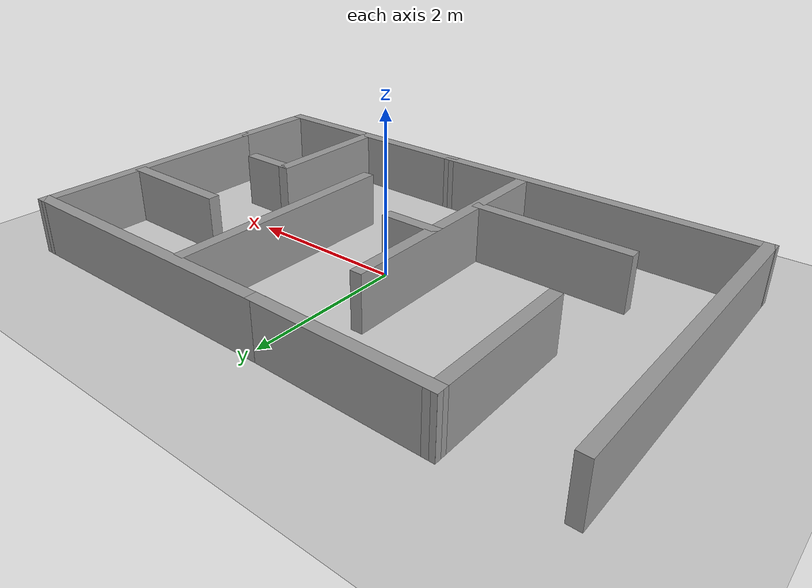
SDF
<?xml version="1.0"?>
<sdf version="1.6">
  <world name="maze_2_world">

    <!-- Required plugin for ROS-Gazebo interaction -->
    <plugin name="gazebo_ros_factory" filename="libgazebo_ros_factory.so"/>

    <!-- Ground plane -->
    <include>
      <uri>model://ground_plane</uri>
    </include>

    <!-- Sun (lighting) -->
    <include>
      <uri>model://sun</uri>
    </include>

    <include>
      <uri>model://maze_2</uri>  <!-- Must match model.config -->
      <pose>0 0 0 0 0 0</pose>   <!-- x y z roll pitch yaw -->
    </include>

    <!-- Scene settings (shadows, etc.) -->
    <scene>
      <shadows>false</shadows>
    </scene>

    <!-- Default camera view -->
    <gui fullscreen='0'>
      <camera name='user_camera'>
        <pose frame=''>0.319654 -0.235002 9.29441 0 1.5138 0.009599</pose>
        <view_controller>orbit</view_controller>
        <projection_type>perspective</projection_type>
      </camera>
    </gui>

    <!-- Physics engine settings (same as original) -->
    <physics type="ode">
      <real_time_update_rate>1000.0</real_time_update_rate>
      <max_step_size>0.001</max_step_size>
      <real_time_factor>1</real_time_factor>
      <ode>
        <solver>
          <type>quick</type>
          <iters>150</iters>
          <precon_iters>0</precon_iters>
          <sor>1.400000</sor>
          <use_dynamic_moi_rescaling>1</use_dynamic_moi_rescaling>
        </solver>
        <constraints>
          <cfm>0.00001</cfm>
          <erp>0.2</erp>
          <contact_max_correcting_vel>2000.000000</contact_max_correcting_vel>
          <contact_surface_layer>0.01000</contact_surface_layer>
        </constraints>
      </ode>
    </physics>

    <!-- Optional: If your maze is static (unchanging), declare it -->
    <model name="maze_2">
      <static>true</static>  <!-- Prevents physics updates for better performance -->
    </model>

  </world>
</sdf>

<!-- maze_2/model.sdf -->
<sdf version='1.7'>
  <model name='maze_2'>
    <pose>-2.50835 0.888785 0 0 -0 0</pose>
    <link name='Wall_0'>
      <collision name='Wall_0_Collision'>
        <geometry>
          <box>
            <size>3.07134 0.15 0.7</size>
          </box>
        </geometry>
        <pose>0 0 0.35 0 -0 0</pose>
      </collision>
      <visual name='Wall_0_Visual'>
        <pose>0 0 0.35 0 -0 0</pose>
        <geometry>
          <box>
            <size>3.07134 0.15 0.7</size>
          </box>
        </geometry>
        <material>
          <script>
            <uri>file://media/materials/scripts/gazebo.material</uri>
            <name>Gazebo/Grey</name>
          </script>
          <ambient>1 1 1 1</ambient>
        </material>
        <meta>
          <layer>0</layer>
        </meta>
      </visual>
      <pose>2.04485 -2.11228 0 0 -0 -0.004451</pose>
    </link>
    <link name='Wall_1'>
      <collision name='Wall_1_Collision'>
        <geometry>
          <box>
            <size>1.28749 0.15 0.7</size>
          </box>
        </geometry>
        <pose>0 0 0.35 0 -0 0</pose>
      </collision>
      <visual name='Wall_1_Visual'>
        <pose>0 0 0.35 0 -0 0</pose>
        <geometry>
          <box>
            <size>1.28749 0.15 0.7</size>
          </box>
        </geometry>
        <material>
          <script>
            <uri>file://media/materials/scripts/gazebo.material</uri>
            <name>Gazebo/Grey</name>
          </script>
          <ambient>1 1 1 1</ambient>
        </material>
        <meta>
          <layer>0</layer>
        </meta>
      </visual>
      <pose>3.51024 -1.55006 0 0 -0 1.5622</pose>
    </link>
    <link name='Wall_12'>
      <collision name='Wall_12_Collision'>
        <geometry>
          <box>
            <size>1.5 0.15 0.7</size>
          </box>
        </geometry>
        <pose>0 0 0.35 0 -0 0</pose>
      </collision>
      <visual name='Wall_12_Visual'>
        <pose>0 0 0.35 0 -0 0</pose>
        <geometry>
          <box>
            <size>1.5 0.15 0.7</size>
          </box>
        </geometry>
        <material>
          <script>
            <uri>file://media/materials/scripts/gazebo.material</uri>
            <name>Gazebo/Grey</name>
          </script>
          <ambient>1 1 1 1</ambient>
        </material>
        <meta>
          <layer>0</layer>
        </meta>
      </visual>
      <pose>2.76335 0.809215 0 0 -0 0</pose>
    </link>
    <link name='Wall_14'>
      <collision name='Wall_14_Collision'>
        <geometry>
          <box>
            <size>3 0.15 0.7</size>
          </box>
        </geometry>
        <pose>0 0 0.35 0 -0 0</pose>
      </collision>
      <visual name='Wall_14_Visual'>
        <pose>0 0 0.35 0 -0 0</pose>
        <geometry>
          <box>
            <size>3 0.15 0.7</size>
          </box>
        </geometry>
        <material>
          <script>
            <uri>file://media/materials/scripts/gazebo.material</uri>
            <name>Gazebo/Grey</name>
          </script>
          <ambient>1 1 1 1</ambient>
        </material>
        <meta>
          <layer>0</layer>
        </meta>
      </visual>
      <pose>1.08935 0.534215 0 0 -0 -1.5708</pose>
    </link>
    <link name='Wall_17'>
      <collision name='Wall_17_Collision'>
        <geometry>
          <box>
            <size>4.2497 0.15 0.7</size>
          </box>
        </geometry>
        <pose>0 0 0.35 0 -0 0</pose>
      </collision>
      <visual name='Wall_17_Visual'>
        <pose>0 0 0.35 0 -0 0</pose>
        <geometry>
          <box>
            <size>4.2497 0.15 0.7</size>
          </box>
        </geometry>
        <material>
          <script>
            <uri>file://media/materials/scripts/gazebo.material</uri>
            <name>Gazebo/Grey</name>
          </script>
          <ambient>1 1 1 1</ambient>
        </material>
        <meta>
          <layer>0</layer>
        </meta>
      </visual>
      <pose>-1.46565 -2.10579 0 0 -0 3.14159</pose>
    </link>
    <link name='Wall_18'>
      <collision name='Wall_18_Collision'>
        <geometry>
          <box>
            <size>4.2369 0.15 0.7</size>
          </box>
        </geometry>
        <pose>0 0 0.35 0 -0 0</pose>
      </collision>
      <visual name='Wall_18_Visual'>
        <pose>0 0 0.35 0 -0 0</pose>
        <geometry>
          <box>
            <size>4.2369 0.15 0.7</size>
          </box>
        </geometry>
        <material>
          <script>
            <uri>file://media/materials/scripts/gazebo.material</uri>
            <name>Gazebo/Grey</name>
          </script>
          <ambient>1 1 1 1</ambient>
        </material>
        <meta>
          <layer>0</layer>
        </meta>
      </visual>
      <pose>-3.50915 -0.062285 0 0 -0 1.56762</pose>
    </link>
    <link name='Wall_20'>
      <collision name='Wall_20_Collision'>
        <geometry>
          <box>
            <size>2.25 0.15 0.7</size>
          </box>
        </geometry>
        <pose>0 0 0.35 0 -0 0</pose>
      </collision>
      <visual name='Wall_20_Visual'>
        <pose>0 0 0.35 0 -0 0</pose>
        <geometry>
          <box>
            <size>2.25 0.15 0.7</size>
          </box>
        </geometry>
        <material>
          <script>
            <uri>file://media/materials/scripts/gazebo.material</uri>
            <name>Gazebo/Grey</name>
          </script>
          <ambient>1 1 1 1</ambient>
        </material>
        <meta>
          <layer>0</layer>
        </meta>
      </visual>
      <pose>-1.20265 2.08772 0 0 -0 3.1354</pose>
    </link>
    <link name='Wall_3'>
      <collision name='Wall_3_Collision'>
        <geometry>
          <box>
            <size>1.75 0.15 0.7</size>
          </box>
        </geometry>
        <pose>0 0 0.35 0 -0 0</pose>
      </collision>
      <visual name='Wall_3_Visual'>
        <pose>0 0 0.35 0 -0 0</pose>
        <geometry>
          <box>
            <size>1.75 0.15 0.7</size>
          </box>
        </geometry>
        <material>
          <script>
            <uri>file://media/materials/scripts/gazebo.material</uri>
            <name>Gazebo/Grey</name>
          </script>
          <ambient>1 1 1 1</ambient>
        </material>
        <meta>
          <layer>0</layer>
        </meta>
      </visual>
      <pose>2.10035 -1.27578 0 0 -0 1.5708</pose>
    </link>
    <link name='Wall_33'>
      <collision name='Wall_33_Collision'>
        <geometry>
          <box>
            <size>3.25 0.15 0.7</size>
          </box>
        </geometry>
        <pose>0 0 0.35 0 -0 0</pose>
      </collision>
      <visual name='Wall_33_Visual'>
        <pose>0 0 0.35 0 -0 0</pose>
        <geometry>
          <box>
            <size>3.25 0.15 0.7</size>
          </box>
        </geometry>
        <material>
          <script>
            <uri>file://media/materials/scripts/gazebo.material</uri>
            <name>Gazebo/Grey</name>
          </script>
          <ambient>1 1 1 1</ambient>
        </material>
        <meta>
          <layer>0</layer>
        </meta>
      </visual>
      <pose>-0.54365 -0.504785 0 0 -0 1.5708</pose>
    </link>
    <link name='Wall_35'>
      <collision name='Wall_35_Collision'>
        <geometry>
          <box>
            <size>0.75 0.15 0.7</size>
          </box>
        </geometry>
        <pose>0 0 0.35 0 -0 0</pose>
      </collision>
      <visual name='Wall_35_Visual'>
        <pose>0 0 0.35 0 -0 0</pose>
        <geometry>
          <box>
            <size>0.75 0.15 0.7</size>
          </box>
        </geometry>
        <material>
          <script>
            <uri>file://media/materials/scripts/gazebo.material</uri>
            <name>Gazebo/Grey</name>
          </script>
          <ambient>1 1 1 1</ambient>
        </material>
        <meta>
          <layer>0</layer>
        </meta>
      </visual>
      <pose>-0.24365 -0.168785 0 0 -0 0</pose>
    </link>
    <link name='Wall_38'>
      <collision name='Wall_38_Collision'>
        <geometry>
          <box>
            <size>2.00012 0.15 0.7</size>
          </box>
        </geometry>
        <pose>0 0 0.35 0 -0 0</pose>
      </collision>
      <visual name='Wall_38_Visual'>
        <pose>0 0 0.35 0 -0 0</pose>
        <geometry>
          <box>
            <size>2.00012 0.15 0.7</size>
          </box>
        </geometry>
        <material>
          <script>
            <uri>file://media/materials/scripts/gazebo.material</uri>
            <name>Gazebo/Grey</name>
          </script>
          <ambient>1 1 1 1</ambient>
        </material>
        <meta>
          <layer>0</layer>
        </meta>
      </visual>
      <pose>-2.25265 1.16921 0 0 -0 -1.5708</pose>
    </link>
    <link name='Wall_4'>
      <collision name='Wall_4_Collision'>
        <geometry>
          <box>
            <size>0.75 0.15 0.7</size>
          </box>
        </geometry>
        <pose>0 0 0.35 0 -0 0</pose>
      </collision>
      <visual name='Wall_4_Visual'>
        <pose>0 0 0.35 0 -0 0</pose>
        <geometry>
          <box>
            <size>0.75 0.15 0.7</size>
          </box>
        </geometry>
        <material>
          <script>
            <uri>file://media/materials/scripts/gazebo.material</uri>
            <name>Gazebo/Grey</name>
          </script>
          <ambient>1 1 1 1</ambient>
        </material>
        <meta>
          <layer>0</layer>
        </meta>
      </visual>
      <pose>2.40035 -0.475785 0 0 -0 0</pose>
    </link>
    <link name='Wall_40'>
      <collision name='Wall_40_Collision'>
        <geometry>
          <box>
            <size>2 0.15 0.7</size>
          </box>
        </geometry>
        <pose>0 0 0.35 0 -0 0</pose>
      </collision>
      <visual name='Wall_40_Visual'>
        <pose>0 0 0.35 0 -0 0</pose>
        <geometry>
          <box>
            <size>2 0.15 0.7</size>
          </box>
        </geometry>
        <material>
          <script>
            <uri>file://media/materials/scripts/gazebo.material</uri>
            <name>Gazebo/Grey</name>
          </script>
          <ambient>1 1 1 1</ambient>
        </material>
        <meta>
          <layer>0</layer>
        </meta>
      </visual>
      <pose>-1.51265 -1.03079 0 0 -0 0</pose>
    </link>
    <link name='Wall_6'>
      <collision name='Wall_6_Collision'>
        <geometry>
          <box>
            <size>3.25 0.15 0.7</size>
          </box>
        </geometry>
        <pose>0 0 0.35 0 -0 0</pose>
      </collision>
      <visual name='Wall_6_Visual'>
        <pose>0 0 0.35 0 -0 0</pose>
        <geometry>
          <box>
            <size>3.25 0.15 0.7</size>
          </box>
        </geometry>
        <material>
          <script>
            <uri>file://media/materials/scripts/gazebo.material</uri>
            <name>Gazebo/Grey</name>
          </script>
          <ambient>1 1 1 1</ambient>
        </material>
        <meta>
          <layer>0</layer>
        </meta>
      </visual>
      <pose>3.51512 0.568665 0 0 -0 1.5708</pose>
    </link>
    <link name='Wall_7'>
      <collision name='Wall_7_Collision'>
        <geometry>
          <box>
            <size>3.81797 0.15 0.7</size>
          </box>
        </geometry>
        <pose>0 0 0.35 0 -0 0</pose>
      </collision>
      <visual name='Wall_7_Visual'>
        <pose>0 0 0.35 0 -0 0</pose>
        <geometry>
          <box>
            <size>3.81797 0.15 0.7</size>
          </box>
        </geometry>
        <material>
          <script>
            <uri>file://media/materials/scripts/gazebo.material</uri>
            <name>Gazebo/Grey</name>
          </script>
          <ambient>1 1 1 1</ambient>
        </material>
        <meta>
          <layer>0</layer>
        </meta>
      </visual>
      <pose>1.68124 2.09994 0 0 -0 -3.13138</pose>
    </link>
    <static>1</static>
  </model>
</sdf>
